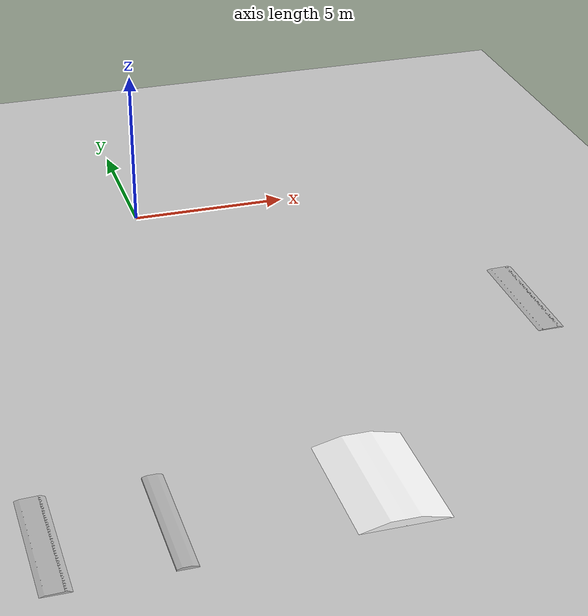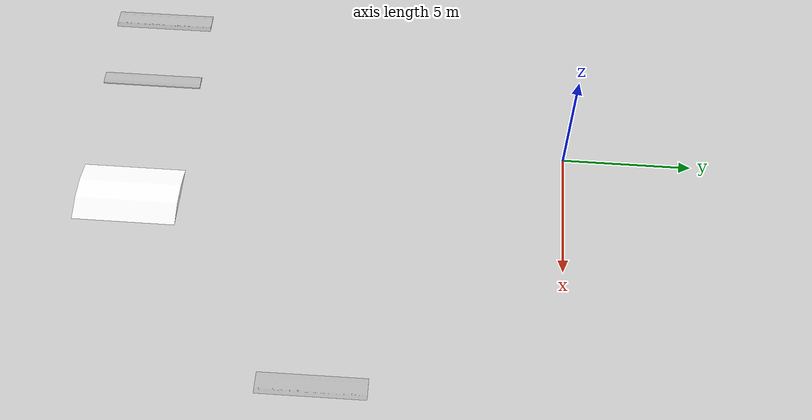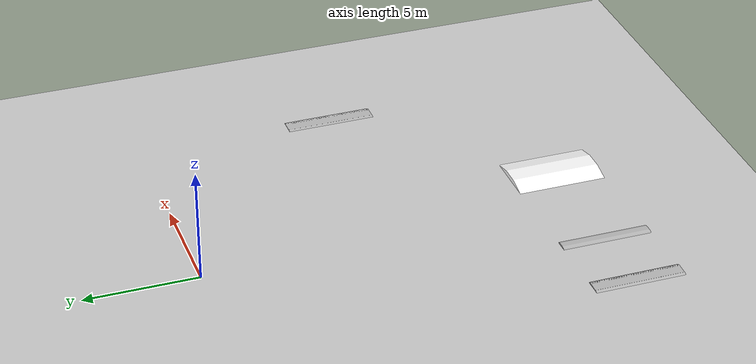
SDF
<sdf version="1.9">
 <world name="empty">
  <model name="ground_plane">
   <static>true</static>
   <link name="link">
    <collision name="collision">
     <geometry><plane><normal>0 0 1</normal><size>100 100</size></plane></geometry>
    </collision>
    <visual name="visual">
     <geometry><plane><normal>0 0 1</normal><size>100 100</size></plane></geometry>
     <material>
      <ambient>0.8 0.8 0.8 1</ambient>
      <diffuse>0.8 0.8 0.8 1</diffuse>
      <specular>0.8 0.8 0.8 1</specular>
     </material>
    </visual>
    <inertial>
     <mass>1</mass>
     <inertia><ixx>1</ixx><ixy>0</ixy><ixz>0</ixz><iyy>1</iyy><iyz>0</iyz><izz>1</izz></inertia>
    </inertial>
   </link>
  </model>
  <model name="speed_bump_2_short">
   <static>true</static>
   <link name="link">
    <collision name="collision">
     <geometry><mesh><uri>models/speed_bump_2_short//bump_1_060.dae</uri></mesh></geometry>
     <surface><friction><ode><mu>0.90000000000000002</mu><mu2>0.59999999999999998</mu2></ode></friction></surface>
    </collision>
    <visual name="visual">
     <geometry><mesh><uri>models/speed_bump_2_short//bump_1_060.dae</uri></mesh></geometry>
    </visual>
    <inertial>
     <mass>1</mass>
     <inertia><ixx>1</ixx><ixy>0</ixy><ixz>0</ixz><iyy>1</iyy><iyz>0</iyz><izz>1</izz></inertia>
    </inertial>
   </link>
   <pose>10.58606 -10.85246 0.0 0.0 -0.0 1.57586</pose>
  </model>
  <model name="ramp_2">
   <static>true</static>
   <link name="link">
    <collision name="collision">
     <geometry><mesh><uri>models/ramp_2//ramp_020.dae</uri></mesh></geometry>
     <surface><friction><ode><mu>0.90000000000000002</mu><mu2>0.59999999999999998</mu2></ode></friction></surface>
    </collision>
    <visual name="visual"><geometry><mesh><uri>models/ramp_2//ramp_020.dae</uri></mesh></geometry></visual>
    <inertial>
     <mass>1</mass>
     <inertia><ixx>1</ixx><ixy>0</ixy><ixz>0</ixz><iyy>1</iyy><iyz>0</iyz><izz>1</izz></inertia>
    </inertial>
   </link>
   <pose>1.53805 -18.79726 0.0 0.0 -0.0 0.0</pose>
  </model>
  <model name="speed_bump_1">
   <static>true</static>
   <link name="link">
    <collision name="collision">
     <geometry><mesh><uri>models/speed_bump_1//bump_1.dae</uri></mesh></geometry>
     <surface><friction><ode><mu>0.90000000000000002</mu><mu2>0.59999999999999998</mu2></ode></friction></surface>
    </collision>
    <visual name="visual"><geometry><mesh><uri>models/speed_bump_1//bump_1.dae</uri></mesh></geometry></visual>
    <inertial>
     <mass>1</mass>
     <inertia><ixx>1</ixx><ixy>0</ixy><ixz>0</ixz><iyy>1</iyy><iyz>0</iyz><izz>1</izz></inertia>
    </inertial>
   </link>
   <pose>-2.46827 -18.89366 0.0 0.0 -0.0 1.57</pose>
  </model>
  <model name="speed_bump_2">
   <static>true</static>
   <link name="link">
    <collision name="collision">
     <geometry><mesh><uri>models/speed_bump_2//bump_2.dae</uri></mesh></geometry>
     <surface><friction><ode><mu>0.90000000000000002</mu><mu2>0.59999999999999998</mu2></ode></friction></surface>
    </collision>
    <visual name="visual"><geometry><mesh><uri>models/speed_bump_2//bump_2.dae</uri></mesh></geometry></visual>
    <inertial>
     <mass>1</mass>
     <inertia><ixx>1</ixx><ixy>0</ixy><ixz>0</ixz><iyy>1</iyy><iyz>0</iyz><izz>1</izz></inertia>
    </inertial>
   </link>
   <pose>-5.52609 -18.95126 0.0 0.0 -0.0 1.57</pose>
  </model>
 </world>
</sdf>
